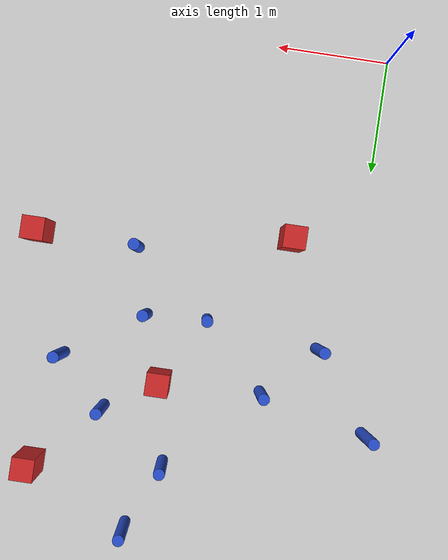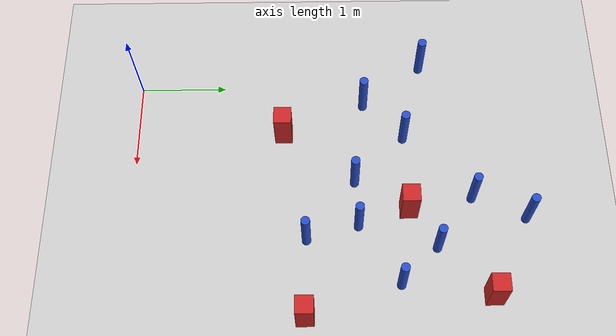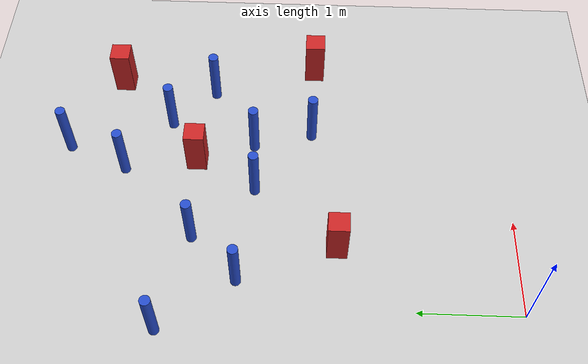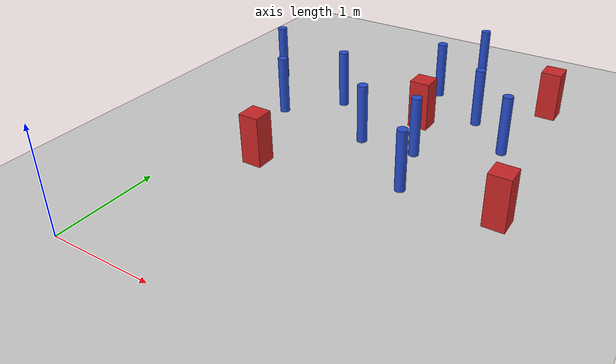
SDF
<sdf version="1.6">
 <world name="default">
  <model name="ground_plane">
   <static>1</static>
   <link name="link">
    <collision name="collision">
     <geometry><plane><normal>0 0 1</normal><size>100 100</size></plane></geometry>
     <surface><friction><ode><mu>100</mu><mu2>50</mu2></ode></friction></surface>
    </collision>
    <visual name="visual">
     <cast_shadows>0</cast_shadows>
     <geometry><plane><normal>0 0 1</normal><size>100 100</size></plane></geometry>
     <material>
      <ambient>1.0 1.0 1.0 1.0</ambient>
      <diffuse>0.8 0.8 0.8 1.0</diffuse>
      <specular>0.01 0.01 0.01 1.000000</specular>
     </material>
    </visual>
   </link>
  </model>
  <model name="pole_obstacle7">
   <static>true</static>
   <pose>1.28148390467 2.54067466043 -9.47619616065e-06 5.49618799737e-07 2.36310414062e-07 -1.55090534798e-07</pose>
   <link name="link">
    <pose>0 0 0.3 0 -0 0</pose>
    <inertial>
     <mass>1</mass>
     <inertia><ixx>0.145833</ixx><ixy>0</ixy><ixz>0</ixz><iyy>0.145833</iyy><iyz>0</iyz><izz>0.125</izz></inertia>
    </inertial>
    <collision name="collision">
     <geometry><cylinder><radius>0.05</radius><length>.6</length></cylinder></geometry>
    </collision>
    <visual name="visual">
     <geometry><cylinder><radius>0.05</radius><length>.6</length></cylinder></geometry>
     <material>
      <script><name>Gazebo/Blue</name><uri>file://media/materials/scripts/gazebo.material</uri></script>
     </material>
    </visual>
   </link>
  </model>
  <model name="pole_obstacle30">
   <static>true</static>
   <pose>-0.254075386701 3.35910105093 -9.47619616065e-06 5.49618799738e-07 2.36310414071e-07 -1.55090534795e-07</pose>
   <link name="link">
    <pose>0 0 0.3 0 -0 0</pose>
    <inertial>
     <mass>1</mass>
     <inertia><ixx>0.145833</ixx><ixy>0</ixy><ixz>0</ixz><iyy>0.145833</iyy><iyz>0</iyz><izz>0.125</izz></inertia>
    </inertial>
    <collision name="collision">
     <geometry><cylinder><radius>0.05</radius><length>.6</length></cylinder></geometry>
    </collision>
    <visual name="visual">
     <geometry><cylinder><radius>0.05</radius><length>.6</length></cylinder></geometry>
     <material>
      <script><name>Gazebo/Blue</name><uri>file://media/materials/scripts/gazebo.material</uri></script>
     </material>
    </visual>
   </link>
  </model>
  <model name="pole_obstacle89">
   <static>true</static>
   <pose>0.71544250455 3.12018920715 -9.47619616065e-06 5.49618799737e-07 2.36310414066e-07 -1.55090534797e-07</pose>
   <link name="link">
    <pose>0 0 0.3 0 -0 0</pose>
    <inertial>
     <mass>1</mass>
     <inertia><ixx>0.145833</ixx><ixy>0</ixy><ixz>0</ixz><iyy>0.145833</iyy><iyz>0</iyz><izz>0.125</izz></inertia>
    </inertial>
    <collision name="collision">
     <geometry><cylinder><radius>0.05</radius><length>.6</length></cylinder></geometry>
    </collision>
    <visual name="visual">
     <geometry><cylinder><radius>0.05</radius><length>.6</length></cylinder></geometry>
     <material>
      <script><name>Gazebo/Blue</name><uri>file://media/materials/scripts/gazebo.material</uri></script>
     </material>
    </visual>
   </link>
  </model>
  <model name="square_post_obstacle85">
   <static>true</static>
   <pose>2.87400250664 1.97037312836 -6.11067671241e-07 -5.50515727128e-06 -8.79689657224e-07 2.37013304536e-05</pose>
   <link name="link">
    <pose>0 0 0.25 0 -0 0</pose>
    <inertial>
     <mass>100</mass>
     <inertia>
      <ixx>0.166667</ixx>
      <ixy>0</ixy>
      <ixz>0</ixz>
      <iyy>0.166667</iyy>
      <iyz>0</iyz>
      <izz>0.166667</izz>
     </inertia>
    </inertial>
    <collision name="collision"><geometry><box><size>.2 .2 .5</size></box></geometry></collision>
    <visual name="visual">
     <geometry><box><size>.2 .2 .5</size></box></geometry>
     <material>
      <script><name>Gazebo/Red</name><uri>file://media/materials/scripts/gazebo.material</uri></script>
     </material>
    </visual>
   </link>
  </model>
  <model name="square_post_obstacle129">
   <static>true</static>
   <pose>2.66013791886 4.02760204925 -6.11067671241e-07 -5.50515727128e-06 -8.79689657224e-07 2.37013304536e-05</pose>
   <link name="link">
    <pose>0 0 0.25 0 -0 0</pose>
    <inertial>
     <mass>100</mass>
     <inertia>
      <ixx>0.166667</ixx>
      <ixy>0</ixy>
      <ixz>0</ixz>
      <iyy>0.166667</iyy>
      <iyz>0</iyz>
      <izz>0.166667</izz>
     </inertia>
    </inertial>
    <collision name="collision"><geometry><box><size>.2 .2 .5</size></box></geometry></collision>
    <visual name="visual">
     <geometry><box><size>.2 .2 .5</size></box></geometry>
     <material>
      <script><name>Gazebo/Red</name><uri>file://media/materials/scripts/gazebo.material</uri></script>
     </material>
    </visual>
   </link>
  </model>
  <model name="pole_obstacle137">
   <static>true</static>
   <pose>2.52163070391 3.02712835651 -9.47619616065e-06 5.49618799737e-07 2.36310414051e-07 -1.55090534807e-07</pose>
   <link name="link">
    <pose>0 0 0.3 0 -0 0</pose>
    <inertial>
     <mass>1</mass>
     <inertia><ixx>0.145833</ixx><ixy>0</ixy><ixz>0</ixz><iyy>0.145833</iyy><iyz>0</iyz><izz>0.125</izz></inertia>
    </inertial>
    <collision name="collision">
     <geometry><cylinder><radius>0.05</radius><length>.6</length></cylinder></geometry>
    </collision>
    <visual name="visual">
     <geometry><cylinder><radius>0.05</radius><length>.6</length></cylinder></geometry>
     <material>
      <script><name>Gazebo/Blue</name><uri>file://media/materials/scripts/gazebo.material</uri></script>
     </material>
    </visual>
   </link>
  </model>
  <model name="pole_obstacle141">
   <static>true</static>
   <pose>2.09531432436 3.4475018337 -9.47619616065e-06 5.49618799737e-07 2.36310414051e-07 -1.55090534807e-07</pose>
   <link name="link">
    <pose>0 0 0.3 0 -0 0</pose>
    <inertial>
     <mass>1</mass>
     <inertia><ixx>0.145833</ixx><ixy>0</ixy><ixz>0</ixz><iyy>0.145833</iyy><iyz>0</iyz><izz>0.125</izz></inertia>
    </inertial>
    <collision name="collision">
     <geometry><cylinder><radius>0.05</radius><length>.6</length></cylinder></geometry>
    </collision>
    <visual name="visual">
     <geometry><cylinder><radius>0.05</radius><length>.6</length></cylinder></geometry>
     <material>
      <script><name>Gazebo/Blue</name><uri>file://media/materials/scripts/gazebo.material</uri></script>
     </material>
    </visual>
   </link>
  </model>
  <model name="pole_obstacle142">
   <static>true</static>
   <pose>1.75295875146 4.47146683091 -9.47619616065e-06 5.49618799737e-07 2.36310414061e-07 -1.550905348e-07</pose>
   <link name="link">
    <pose>0 0 0.3 0 -0 0</pose>
    <inertial>
     <mass>1</mass>
     <inertia><ixx>0.145833</ixx><ixy>0</ixy><ixz>0</ixz><iyy>0.145833</iyy><iyz>0</iyz><izz>0.125</izz></inertia>
    </inertial>
    <collision name="collision">
     <geometry><cylinder><radius>0.05</radius><length>.6</length></cylinder></geometry>
    </collision>
    <visual name="visual">
     <geometry><cylinder><radius>0.05</radius><length>.6</length></cylinder></geometry>
     <material>
      <script><name>Gazebo/Blue</name><uri>file://media/materials/scripts/gazebo.material</uri></script>
     </material>
    </visual>
   </link>
  </model>
  <model name="pole_obstacle144">
   <static>true</static>
   <pose>1.98820349261 1.98571593071 -9.47619616065e-06 5.49618799737e-07 2.36310414065e-07 -1.55090534798e-07</pose>
   <link name="link">
    <pose>0 0 0.3 0 -0 0</pose>
    <inertial>
     <mass>1</mass>
     <inertia><ixx>0.145833</ixx><ixy>0</ixy><ixz>0</ixz><iyy>0.145833</iyy><iyz>0</iyz><izz>0.125</izz></inertia>
    </inertial>
    <collision name="collision">
     <geometry><cylinder><radius>0.05</radius><length>.6</length></cylinder></geometry>
    </collision>
    <visual name="visual">
     <geometry><cylinder><radius>0.05</radius><length>.6</length></cylinder></geometry>
     <material>
      <script><name>Gazebo/Blue</name><uri>file://media/materials/scripts/gazebo.material</uri></script>
     </material>
    </visual>
   </link>
  </model>
  <model name="pole_obstacle156">
   <static>true</static>
   <pose>0.264594221144 2.6609066596 -9.47619616065e-06 5.49618799737e-07 2.36310414065e-07 -1.55090534798e-07</pose>
   <link name="link">
    <pose>0 0 0.3 0 -0 0</pose>
    <inertial>
     <mass>1</mass>
     <inertia><ixx>0.145833</ixx><ixy>0</ixy><ixz>0</ixz><iyy>0.145833</iyy><iyz>0</iyz><izz>0.125</izz></inertia>
    </inertial>
    <collision name="collision">
     <geometry><cylinder><radius>0.05</radius><length>.6</length></cylinder></geometry>
    </collision>
    <visual name="visual">
     <geometry><cylinder><radius>0.05</radius><length>.6</length></cylinder></geometry>
     <material>
      <script><name>Gazebo/Blue</name><uri>file://media/materials/scripts/gazebo.material</uri></script>
     </material>
    </visual>
   </link>
  </model>
  <model name="pole_obstacle165">
   <static>true</static>
   <pose>1.49548700177 3.87255924342 -9.47619616065e-06 5.49618799737e-07 2.36310414062e-07 -1.55090534798e-07</pose>
   <link name="link">
    <pose>0 0 0.3 0 -0 0</pose>
    <inertial>
     <mass>1</mass>
     <inertia><ixx>0.145833</ixx><ixy>0</ixy><ixz>0</ixz><iyy>0.145833</iyy><iyz>0</iyz><izz>0.125</izz></inertia>
    </inertial>
    <collision name="collision">
     <geometry><cylinder><radius>0.05</radius><length>.6</length></cylinder></geometry>
    </collision>
    <visual name="visual">
     <geometry><cylinder><radius>0.05</radius><length>.6</length></cylinder></geometry>
     <material>
      <script><name>Gazebo/Blue</name><uri>file://media/materials/scripts/gazebo.material</uri></script>
     </material>
    </visual>
   </link>
  </model>
  <model name="square_post_obstacle159">
   <static>true</static>
   <pose>1.62621843156 3.14608144077 -6.11067671241e-07 -5.50515727128e-06 -8.79689657224e-07 2.37013304536e-05</pose>
   <link name="link">
    <pose>0 0 0.25 0 -0 0</pose>
    <inertial>
     <mass>100</mass>
     <inertia>
      <ixx>0.166667</ixx>
      <ixy>0</ixy>
      <ixz>0</ixz>
      <iyy>0.166667</iyy>
      <iyz>0</iyz>
      <izz>0.166667</izz>
     </inertia>
    </inertial>
    <collision name="collision"><geometry><box><size>.2 .2 .5</size></box></geometry></collision>
    <visual name="visual">
     <geometry><box><size>.2 .2 .5</size></box></geometry>
     <material>
      <script><name>Gazebo/Red</name><uri>file://media/materials/scripts/gazebo.material</uri></script>
     </material>
    </visual>
   </link>
  </model>
  <model name="square_post_obstacle206">
   <static>true</static>
   <pose>0.643231694678 1.72088690238 -6.11067671241e-07 -5.50515727128e-06 -8.79689657224e-07 2.37013304536e-05</pose>
   <link name="link">
    <pose>0 0 0.25 0 -0 0</pose>
    <inertial>
     <mass>100</mass>
     <inertia>
      <ixx>0.166667</ixx>
      <ixy>0</ixy>
      <ixz>0</ixz>
      <iyy>0.166667</iyy>
      <iyz>0</iyz>
      <izz>0.166667</izz>
     </inertia>
    </inertial>
    <collision name="collision"><geometry><box><size>.2 .2 .5</size></box></geometry></collision>
    <visual name="visual">
     <geometry><box><size>.2 .2 .5</size></box></geometry>
     <material>
      <script><name>Gazebo/Red</name><uri>file://media/materials/scripts/gazebo.material</uri></script>
     </material>
    </visual>
   </link>
  </model>
  <model name="pole_obstacle213">
   <static>true</static>
   <pose>1.82706000939 2.57319002078 -9.4761961606e-06 5.49618799729e-07 2.36310414007e-07 -1.5509053482e-07</pose>
   <link name="link">
    <pose>0 0 0.3 0 -0 0</pose>
    <inertial>
     <mass>1</mass>
     <inertia><ixx>0.145833</ixx><ixy>0</ixy><ixz>0</ixz><iyy>0.145833</iyy><iyz>0</iyz><izz>0.125</izz></inertia>
    </inertial>
    <collision name="collision">
     <geometry><cylinder><radius>0.05</radius><length>.6</length></cylinder></geometry>
    </collision>
    <visual name="visual">
     <geometry><cylinder><radius>0.05</radius><length>.6</length></cylinder></geometry>
     <material>
      <script><name>Gazebo/Blue</name><uri>file://media/materials/scripts/gazebo.material</uri></script>
     </material>
    </visual>
   </link>
  </model>
 </world>
</sdf>
